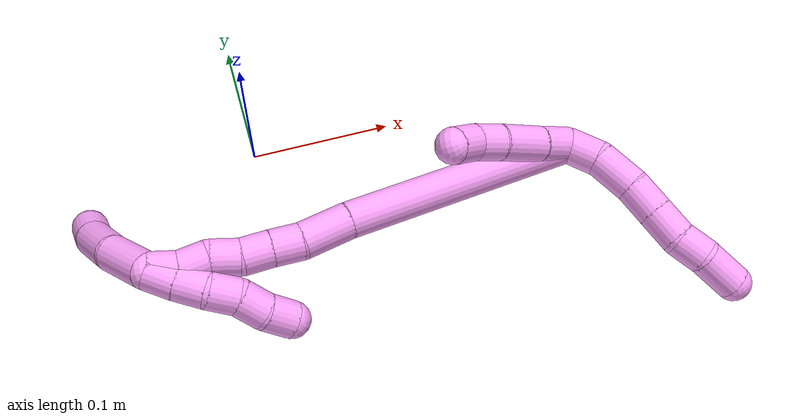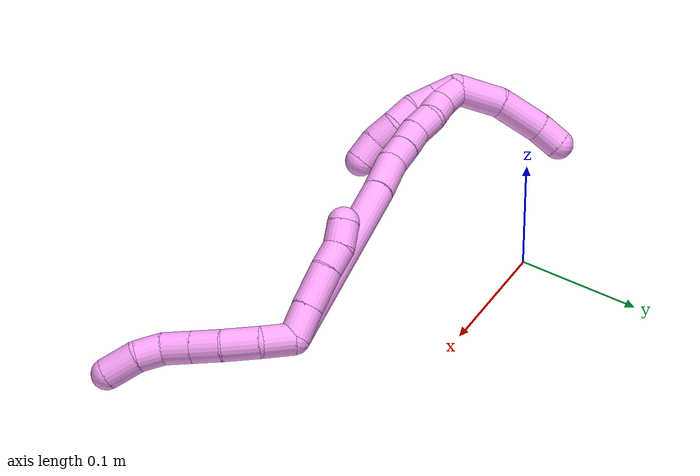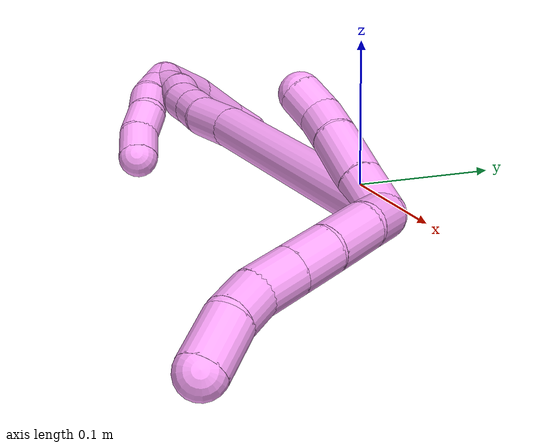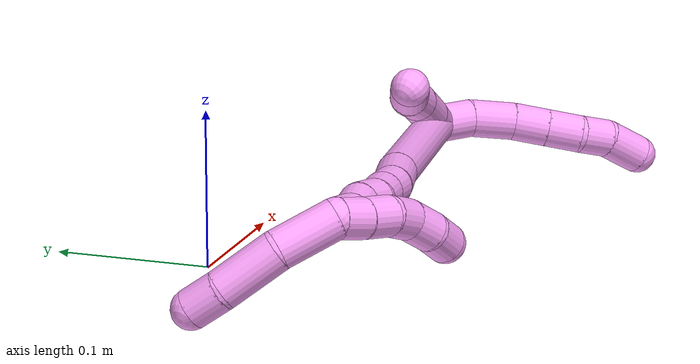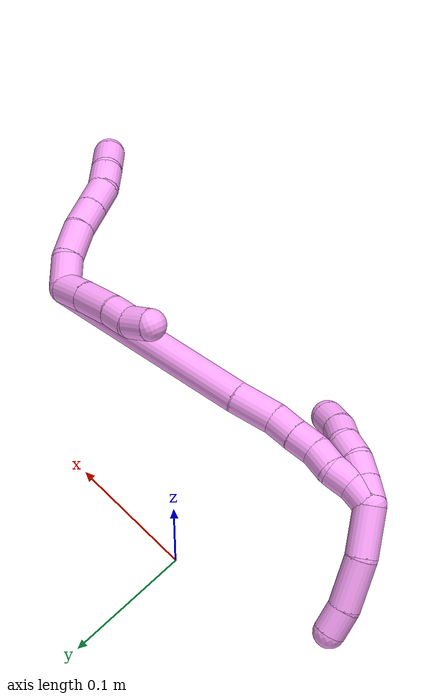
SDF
<sdf version="1.7">
 <world name="default">
  <model name="4">
   <static>0</static>
   <link name="4">
    <collision name="collision-cylinder-e_1_2_8">
     <pose>0.006158 -0.004731 0.010016 0.441319 0.507347 0.116179</pose>
     <geometry><cylinder><radius>0.0125</radius><length>0.025348</length></cylinder></geometry>
     <surface>
      <friction><ode><mu>1.16</mu><mu2>1.16</mu2><slip1>0</slip1><slip2>0</slip2></ode></friction>
      <contact><ode><kp>1e+06</kp><kd>1</kd><max_vel>0</max_vel><min_depth>0.001</min_depth></ode></contact>
     </surface>
    </collision>
    <visual name="visual-cylinder-e_1_2_8">
     <pose>0.006158 -0.004731 0.010016 0.441319 0.507347 0.116179</pose>
     <geometry><cylinder><radius>0.0125</radius><length>0.025348</length></cylinder></geometry>
     <material><ambient>1 0.65098 0.996078 1</ambient></material>
    </visual>
    <collision name="collision-cylinder-e_2_8_9">
     <pose>0.021545 -0.01707 0.028678 0.721548 0.675627 0.26353</pose>
     <geometry><cylinder><radius>0.0125</radius><length>0.029517</length></cylinder></geometry>
     <surface>
      <friction><ode><mu>1.16</mu><mu2>1.16</mu2><slip1>0</slip1><slip2>0</slip2></ode></friction>
      <contact><ode><kp>1e+06</kp><kd>1</kd><max_vel>0</max_vel><min_depth>0.001</min_depth></ode></contact>
     </surface>
    </collision>
    <visual name="visual-cylinder-e_2_8_9">
     <pose>0.021545 -0.01707 0.028678 0.721548 0.675627 0.26353</pose>
     <geometry><cylinder><radius>0.0125</radius><length>0.029517</length></cylinder></geometry>
     <material><ambient>1 0.65098 0.996078 1</ambient></material>
    </visual>
    <collision name="collision-cylinder-e_3_9_10">
     <pose>0.038614 -0.031545 0.04268 0.908492 0.732847 0.37048</pose>
     <geometry><cylinder><radius>0.0125</radius><length>0.023435</length></cylinder></geometry>
     <surface>
      <friction><ode><mu>1.16</mu><mu2>1.16</mu2><slip1>0</slip1><slip2>0</slip2></ode></friction>
      <contact><ode><kp>1e+06</kp><kd>1</kd><max_vel>0</max_vel><min_depth>0.001</min_depth></ode></contact>
     </surface>
    </collision>
    <visual name="visual-cylinder-e_3_9_10">
     <pose>0.038614 -0.031545 0.04268 0.908492 0.732847 0.37048</pose>
     <geometry><cylinder><radius>0.0125</radius><length>0.023435</length></cylinder></geometry>
     <material><ambient>1 0.65098 0.996078 1</ambient></material>
    </visual>
    <collision name="collision-cylinder-e_4_10_11">
     <pose>0.054208 -0.045202 0.05338 0.90387 0.731466 0.367617</pose>
     <geometry><cylinder><radius>0.0125</radius><length>0.023221</length></cylinder></geometry>
     <surface>
      <friction><ode><mu>1.16</mu><mu2>1.16</mu2><slip1>0</slip1><slip2>0</slip2></ode></friction>
      <contact><ode><kp>1e+06</kp><kd>1</kd><max_vel>0</max_vel><min_depth>0.001</min_depth></ode></contact>
     </surface>
    </collision>
    <visual name="visual-cylinder-e_4_10_11">
     <pose>0.054208 -0.045202 0.05338 0.90387 0.731466 0.367617</pose>
     <geometry><cylinder><radius>0.0125</radius><length>0.023221</length></cylinder></geometry>
     <material><ambient>1 0.65098 0.996078 1</ambient></material>
    </visual>
    <collision name="collision-cylinder-e_5_11_12">
     <pose>0.069438 -0.055543 0.064951 0.518413 0.806328 0.225249</pose>
     <geometry><cylinder><radius>0.0125</radius><length>0.020712</length></cylinder></geometry>
     <surface>
      <friction><ode><mu>1.16</mu><mu2>1.16</mu2><slip1>0</slip1><slip2>0</slip2></ode></friction>
      <contact><ode><kp>1e+06</kp><kd>1</kd><max_vel>0</max_vel><min_depth>0.001</min_depth></ode></contact>
     </surface>
    </collision>
    <visual name="visual-cylinder-e_5_11_12">
     <pose>0.069438 -0.055543 0.064951 0.518413 0.806328 0.225249</pose>
     <geometry><cylinder><radius>0.0125</radius><length>0.020712</length></cylinder></geometry>
     <material><ambient>1 0.65098 0.996078 1</ambient></material>
    </visual>
    <collision name="collision-cylinder-e_6_12_6">
     <pose>0.089188 -0.06182 0.077062 0.43376 1.08478 0.264052</pose>
     <geometry><cylinder><radius>0.0125</radius><length>0.027768</length></cylinder></geometry>
     <surface>
      <friction><ode><mu>1.16</mu><mu2>1.16</mu2><slip1>0</slip1><slip2>0</slip2></ode></friction>
      <contact><ode><kp>1e+06</kp><kd>1</kd><max_vel>0</max_vel><min_depth>0.001</min_depth></ode></contact>
     </surface>
    </collision>
    <visual name="visual-cylinder-e_6_12_6">
     <pose>0.089188 -0.06182 0.077062 0.43376 1.08478 0.264052</pose>
     <geometry><cylinder><radius>0.0125</radius><length>0.027768</length></cylinder></geometry>
     <material><ambient>1 0.65098 0.996078 1</ambient></material>
    </visual>
    <collision name="collision-cylinder-e_1_2_13">
     <pose>-0.008983 -0.007045 -0.006127 2.28662 -0.766077 -1.44832</pose>
     <geometry><cylinder><radius>0.0125</radius><length>0.025913</length></cylinder></geometry>
     <surface>
      <friction><ode><mu>1.16</mu><mu2>1.16</mu2><slip1>0</slip1><slip2>0</slip2></ode></friction>
      <contact><ode><kp>1e+06</kp><kd>1</kd><max_vel>0</max_vel><min_depth>0.001</min_depth></ode></contact>
     </surface>
    </collision>
    <visual name="visual-cylinder-e_1_2_13">
     <pose>-0.008983 -0.007045 -0.006127 2.28662 -0.766077 -1.44832</pose>
     <geometry><cylinder><radius>0.0125</radius><length>0.025913</length></cylinder></geometry>
     <material><ambient>1 0.65098 0.996078 1</ambient></material>
    </visual>
    <collision name="collision-cylinder-e_2_13_14">
     <pose>-0.029769 -0.022712 -0.020645 2.3426 -0.775839 -1.53812</pose>
     <geometry><cylinder><radius>0.0125</radius><length>0.033706</length></cylinder></geometry>
     <surface>
      <friction><ode><mu>1.16</mu><mu2>1.16</mu2><slip1>0</slip1><slip2>0</slip2></ode></friction>
      <contact><ode><kp>1e+06</kp><kd>1</kd><max_vel>0</max_vel><min_depth>0.001</min_depth></ode></contact>
     </surface>
    </collision>
    <visual name="visual-cylinder-e_2_13_14">
     <pose>-0.029769 -0.022712 -0.020645 2.3426 -0.775839 -1.53812</pose>
     <geometry><cylinder><radius>0.0125</radius><length>0.033706</length></cylinder></geometry>
     <material><ambient>1 0.65098 0.996078 1</ambient></material>
    </visual>
    <collision name="collision-cylinder-e_3_14_15">
     <pose>-0.048144 -0.036169 -0.034979 2.45858 -0.709012 -1.61134</pose>
     <geometry><cylinder><radius>0.0125</radius><length>0.02019</length></cylinder></geometry>
     <surface>
      <friction><ode><mu>1.16</mu><mu2>1.16</mu2><slip1>0</slip1><slip2>0</slip2></ode></friction>
      <contact><ode><kp>1e+06</kp><kd>1</kd><max_vel>0</max_vel><min_depth>0.001</min_depth></ode></contact>
     </surface>
    </collision>
    <visual name="visual-cylinder-e_3_14_15">
     <pose>-0.048144 -0.036169 -0.034979 2.45858 -0.709012 -1.61134</pose>
     <geometry><cylinder><radius>0.0125</radius><length>0.02019</length></cylinder></geometry>
     <material><ambient>1 0.65098 0.996078 1</ambient></material>
    </visual>
    <collision name="collision-cylinder-e_4_15_5">
     <pose>-0.060927 -0.048118 -0.044493 2.03613 -0.662652 -1.01742</pose>
     <geometry><cylinder><radius>0.0125</radius><length>0.020191</length></cylinder></geometry>
     <surface>
      <friction><ode><mu>1.16</mu><mu2>1.16</mu2><slip1>0</slip1><slip2>0</slip2></ode></friction>
      <contact><ode><kp>1e+06</kp><kd>1</kd><max_vel>0</max_vel><min_depth>0.001</min_depth></ode></contact>
     </surface>
    </collision>
    <visual name="visual-cylinder-e_4_15_5">
     <pose>-0.060927 -0.048118 -0.044493 2.03613 -0.662652 -1.01742</pose>
     <geometry><cylinder><radius>0.0125</radius><length>0.020191</length></cylinder></geometry>
     <material><ambient>1 0.65098 0.996078 1</ambient></material>
    </visual>
    <collision name="collision-cylinder-e_1_2_16">
     <pose>-0.029982 -0.046366 -0.06182 2.49808 -0.370114 -1.02339</pose>
     <geometry><cylinder><radius>0.0125</radius><length>0.165776</length></cylinder></geometry>
     <surface>
      <friction><ode><mu>1.16</mu><mu2>1.16</mu2><slip1>0</slip1><slip2>0</slip2></ode></friction>
      <contact><ode><kp>1e+06</kp><kd>1</kd><max_vel>0</max_vel><min_depth>0.001</min_depth></ode></contact>
     </surface>
    </collision>
    <visual name="visual-cylinder-e_1_2_16">
     <pose>-0.029982 -0.046366 -0.06182 2.49808 -0.370114 -1.02339</pose>
     <geometry><cylinder><radius>0.0125</radius><length>0.165776</length></cylinder></geometry>
     <material><ambient>1 0.65098 0.996078 1</ambient></material>
    </visual>
    <collision name="collision-cylinder-e_2_16_17">
     <pose>-0.064974 -0.103035 -0.136116 2.45132 -0.30023 -0.796448</pose>
     <geometry><cylinder><radius>0.0125</radius><length>0.033877</length></cylinder></geometry>
     <surface>
      <friction><ode><mu>1.16</mu><mu2>1.16</mu2><slip1>0</slip1><slip2>0</slip2></ode></friction>
      <contact><ode><kp>1e+06</kp><kd>1</kd><max_vel>0</max_vel><min_depth>0.001</min_depth></ode></contact>
     </surface>
    </collision>
    <visual name="visual-cylinder-e_2_16_17">
     <pose>-0.064974 -0.103035 -0.136116 2.45132 -0.30023 -0.796448</pose>
     <geometry><cylinder><radius>0.0125</radius><length>0.033877</length></cylinder></geometry>
     <material><ambient>1 0.65098 0.996078 1</ambient></material>
    </visual>
    <collision name="collision-cylinder-e_3_17_18">
     <pose>-0.07415 -0.117978 -0.156554 2.614 -0.424656 -1.34724</pose>
     <geometry><cylinder><radius>0.0125</radius><length>0.020226</length></cylinder></geometry>
     <surface>
      <friction><ode><mu>1.16</mu><mu2>1.16</mu2><slip1>0</slip1><slip2>0</slip2></ode></friction>
      <contact><ode><kp>1e+06</kp><kd>1</kd><max_vel>0</max_vel><min_depth>0.001</min_depth></ode></contact>
     </surface>
    </collision>
    <visual name="visual-cylinder-e_3_17_18">
     <pose>-0.07415 -0.117978 -0.156554 2.614 -0.424656 -1.34724</pose>
     <geometry><cylinder><radius>0.0125</radius><length>0.020226</length></cylinder></geometry>
     <material><ambient>1 0.65098 0.996078 1</ambient></material>
    </visual>
    <collision name="collision-cylinder-e_4_18_19">
     <pose>-0.082162 -0.12767 -0.17228 2.56466 -0.393411 -1.18277</pose>
     <geometry><cylinder><radius>0.0125</radius><length>0.02006</length></cylinder></geometry>
     <surface>
      <friction><ode><mu>1.16</mu><mu2>1.16</mu2><slip1>0</slip1><slip2>0</slip2></ode></friction>
      <contact><ode><kp>1e+06</kp><kd>1</kd><max_vel>0</max_vel><min_depth>0.001</min_depth></ode></contact>
     </surface>
    </collision>
    <visual name="visual-cylinder-e_4_18_19">
     <pose>-0.082162 -0.12767 -0.17228 2.56466 -0.393411 -1.18277</pose>
     <geometry><cylinder><radius>0.0125</radius><length>0.02006</length></cylinder></geometry>
     <material><ambient>1 0.65098 0.996078 1</ambient></material>
    </visual>
    <collision name="collision-cylinder-e_5_19_20">
     <pose>-0.0913 -0.135547 -0.188054 2.80262 -0.557347 -2.06355</pose>
     <geometry><cylinder><radius>0.0125</radius><length>0.020014</length></cylinder></geometry>
     <surface>
      <friction><ode><mu>1.16</mu><mu2>1.16</mu2><slip1>0</slip1><slip2>0</slip2></ode></friction>
      <contact><ode><kp>1e+06</kp><kd>1</kd><max_vel>0</max_vel><min_depth>0.001</min_depth></ode></contact>
     </surface>
    </collision>
    <visual name="visual-cylinder-e_5_19_20">
     <pose>-0.0913 -0.135547 -0.188054 2.80262 -0.557347 -2.06355</pose>
     <geometry><cylinder><radius>0.0125</radius><length>0.020014</length></cylinder></geometry>
     <material><ambient>1 0.65098 0.996078 1</ambient></material>
    </visual>
    <collision name="collision-cylinder-e_6_20_21">
     <pose>-0.099313 -0.143486 -0.204216 2.58122 -0.275435 -0.897706</pose>
     <geometry><cylinder><radius>0.0125</radius><length>0.020003</length></cylinder></geometry>
     <surface>
      <friction><ode><mu>1.16</mu><mu2>1.16</mu2><slip1>0</slip1><slip2>0</slip2></ode></friction>
      <contact><ode><kp>1e+06</kp><kd>1</kd><max_vel>0</max_vel><min_depth>0.001</min_depth></ode></contact>
     </surface>
    </collision>
    <visual name="visual-cylinder-e_6_20_21">
     <pose>-0.099313 -0.143486 -0.204216 2.58122 -0.275435 -0.897706</pose>
     <geometry><cylinder><radius>0.0125</radius><length>0.020003</length></cylinder></geometry>
     <material><ambient>1 0.65098 0.996078 1</ambient></material>
    </visual>
    <collision name="collision-cylinder-e_7_21_1">
     <pose>-0.107307 -0.151537 -0.220369 2.78989 -0.554126 -2.02465</pose>
     <geometry><cylinder><radius>0.0125</radius><length>0.020044</length></cylinder></geometry>
     <surface>
      <friction><ode><mu>1.16</mu><mu2>1.16</mu2><slip1>0</slip1><slip2>0</slip2></ode></friction>
      <contact><ode><kp>1e+06</kp><kd>1</kd><max_vel>0</max_vel><min_depth>0.001</min_depth></ode></contact>
     </surface>
    </collision>
    <visual name="visual-cylinder-e_7_21_1">
     <pose>-0.107307 -0.151537 -0.220369 2.78989 -0.554126 -2.02465</pose>
     <geometry><cylinder><radius>0.0125</radius><length>0.020044</length></cylinder></geometry>
     <material><ambient>1 0.65098 0.996078 1</ambient></material>
    </visual>
    <collision name="collision-cylinder-e_1_1_22">
     <pose>-0.105946 -0.15539 -0.220944 0.122902 0.725384 0.046689</pose>
     <geometry><cylinder><radius>0.0125</radius><length>0.02</length></cylinder></geometry>
     <surface>
      <friction><ode><mu>1.16</mu><mu2>1.16</mu2><slip1>0</slip1><slip2>0</slip2></ode></friction>
      <contact><ode><kp>1e+06</kp><kd>1</kd><max_vel>0</max_vel><min_depth>0.001</min_depth></ode></contact>
     </surface>
    </collision>
    <visual name="visual-cylinder-e_1_1_22">
     <pose>-0.105946 -0.15539 -0.220944 0.122902 0.725384 0.046689</pose>
     <geometry><cylinder><radius>0.0125</radius><length>0.02</length></cylinder></geometry>
     <material><ambient>1 0.65098 0.996078 1</ambient></material>
    </visual>
    <collision name="collision-cylinder-e_2_22_23">
     <pose>-0.093234 -0.156817 -0.205593 0.064173 0.653272 0.021747</pose>
     <geometry><cylinder><radius>0.0125</radius><length>0.02</length></cylinder></geometry>
     <surface>
      <friction><ode><mu>1.16</mu><mu2>1.16</mu2><slip1>0</slip1><slip2>0</slip2></ode></friction>
      <contact><ode><kp>1e+06</kp><kd>1</kd><max_vel>0</max_vel><min_depth>0.001</min_depth></ode></contact>
     </surface>
    </collision>
    <visual name="visual-cylinder-e_2_22_23">
     <pose>-0.093234 -0.156817 -0.205593 0.064173 0.653272 0.021747</pose>
     <geometry><cylinder><radius>0.0125</radius><length>0.02</length></cylinder></geometry>
     <material><ambient>1 0.65098 0.996078 1</ambient></material>
    </visual>
    <collision name="collision-cylinder-e_3_23_24">
     <pose>-0.079881 -0.155635 -0.191019 -0.249016 0.814637 -0.107891</pose>
     <geometry><cylinder><radius>0.0125</radius><length>0.02</length></cylinder></geometry>
     <surface>
      <friction><ode><mu>1.16</mu><mu2>1.16</mu2><slip1>0</slip1><slip2>0</slip2></ode></friction>
      <contact><ode><kp>1e+06</kp><kd>1</kd><max_vel>0</max_vel><min_depth>0.001</min_depth></ode></contact>
     </surface>
    </collision>
    <visual name="visual-cylinder-e_3_23_24">
     <pose>-0.079881 -0.155635 -0.191019 -0.249016 0.814637 -0.107891</pose>
     <geometry><cylinder><radius>0.0125</radius><length>0.02</length></cylinder></geometry>
     <material><ambient>1 0.65098 0.996078 1</ambient></material>
    </visual>
    <collision name="collision-cylinder-e_4_24_25">
     <pose>-0.063735 -0.153887 -0.179754 -0.012454 1.09106 -0.007559</pose>
     <geometry><cylinder><radius>0.0125</radius><length>0.02</length></cylinder></geometry>
     <surface>
      <friction><ode><mu>1.16</mu><mu2>1.16</mu2><slip1>0</slip1><slip2>0</slip2></ode></friction>
      <contact><ode><kp>1e+06</kp><kd>1</kd><max_vel>0</max_vel><min_depth>0.001</min_depth></ode></contact>
     </surface>
    </collision>
    <visual name="visual-cylinder-e_4_24_25">
     <pose>-0.063735 -0.153887 -0.179754 -0.012454 1.09106 -0.007559</pose>
     <geometry><cylinder><radius>0.0125</radius><length>0.02</length></cylinder></geometry>
     <material><ambient>1 0.65098 0.996078 1</ambient></material>
    </visual>
    <collision name="collision-cylinder-e_5_25_4">
     <pose>-0.046329 -0.151286 -0.170591 -0.509891 1.02272 -0.290427</pose>
     <geometry><cylinder><radius>0.0125</radius><length>0.02</length></cylinder></geometry>
     <surface>
      <friction><ode><mu>1.16</mu><mu2>1.16</mu2><slip1>0</slip1><slip2>0</slip2></ode></friction>
      <contact><ode><kp>1e+06</kp><kd>1</kd><max_vel>0</max_vel><min_depth>0.001</min_depth></ode></contact>
     </surface>
    </collision>
    <visual name="visual-cylinder-e_5_25_4">
     <pose>-0.046329 -0.151286 -0.170591 -0.509891 1.02272 -0.290427</pose>
     <geometry><cylinder><radius>0.0125</radius><length>0.02</length></cylinder></geometry>
     <material><ambient>1 0.65098 0.996078 1</ambient></material>
    </visual>
    <collision name="collision-cylinder-e_1_1_26">
     <pose>-0.11508 -0.144145 -0.244581 -2.57436 -0.129323 0.437208</pose>
     <geometry><cylinder><radius>0.0125</radius><length>0.038768</length></cylinder></geometry>
     <surface>
      <friction><ode><mu>1.16</mu><mu2>1.16</mu2><slip1>0</slip1><slip2>0</slip2></ode></friction>
      <contact><ode><kp>1e+06</kp><kd>1</kd><max_vel>0</max_vel><min_depth>0.001</min_depth></ode></contact>
     </surface>
    </collision>
    <visual name="visual-cylinder-e_1_1_26">
     <pose>-0.11508 -0.144145 -0.244581 -2.57436 -0.129323 0.437208</pose>
     <geometry><cylinder><radius>0.0125</radius><length>0.038768</length></cylinder></geometry>
     <material><ambient>1 0.65098 0.996078 1</ambient></material>
    </visual>
    <collision name="collision-cylinder-e_2_26_27">
     <pose>-0.116016 -0.120843 -0.275689 -2.42503 0.07902 -0.210365</pose>
     <geometry><cylinder><radius>0.0125</radius><length>0.039631</length></cylinder></geometry>
     <surface>
      <friction><ode><mu>1.16</mu><mu2>1.16</mu2><slip1>0</slip1><slip2>0</slip2></ode></friction>
      <contact><ode><kp>1e+06</kp><kd>1</kd><max_vel>0</max_vel><min_depth>0.001</min_depth></ode></contact>
     </surface>
    </collision>
    <visual name="visual-cylinder-e_2_26_27">
     <pose>-0.116016 -0.120843 -0.275689 -2.42503 0.07902 -0.210365</pose>
     <geometry><cylinder><radius>0.0125</radius><length>0.039631</length></cylinder></geometry>
     <material><ambient>1 0.65098 0.996078 1</ambient></material>
    </visual>
    <collision name="collision-cylinder-e_3_27_3">
     <pose>-0.11314 -0.099341 -0.297081 -2.22186 0.121732 -0.244856</pose>
     <geometry><cylinder><radius>0.0125</radius><length>0.021601</length></cylinder></geometry>
     <surface>
      <friction><ode><mu>1.16</mu><mu2>1.16</mu2><slip1>0</slip1><slip2>0</slip2></ode></friction>
      <contact><ode><kp>1e+06</kp><kd>1</kd><max_vel>0</max_vel><min_depth>0.001</min_depth></ode></contact>
     </surface>
    </collision>
    <visual name="visual-cylinder-e_3_27_3">
     <pose>-0.11314 -0.099341 -0.297081 -2.22186 0.121732 -0.244856</pose>
     <geometry><cylinder><radius>0.0125</radius><length>0.021601</length></cylinder></geometry>
     <material><ambient>1 0.65098 0.996078 1</ambient></material>
    </visual>
    <collision name="collision-sphere-3">
     <pose>-0.111828 -0.090814 -0.303578 0 -0 0</pose>
     <geometry><sphere><radius>0.0125</radius></sphere></geometry>
     <surface>
      <friction><ode><mu>1.16</mu><mu2>1.16</mu2><slip1>0</slip1><slip2>0</slip2></ode></friction>
      <contact><ode><kp>1e+06</kp><kd>1</kd><max_vel>0</max_vel><min_depth>0.001</min_depth></ode></contact>
     </surface>
    </collision>
    <visual name="visual-sphere-3">
     <pose>-0.111828 -0.090814 -0.303578 0 -0 0</pose>
     <geometry><sphere><radius>0.0125</radius></sphere></geometry>
     <material><ambient>1 0.65098 0.996078 1</ambient></material>
    </visual>
    <collision name="collision-sphere-27">
     <pose>-0.114451 -0.107869 -0.290584 0 -0 0</pose>
     <geometry><sphere><radius>0.0125</radius></sphere></geometry>
     <surface>
      <friction><ode><mu>1.16</mu><mu2>1.16</mu2><slip1>0</slip1><slip2>0</slip2></ode></friction>
      <contact><ode><kp>1e+06</kp><kd>1</kd><max_vel>0</max_vel><min_depth>0.001</min_depth></ode></contact>
     </surface>
    </collision>
    <visual name="visual-sphere-27">
     <pose>-0.114451 -0.107869 -0.290584 0 -0 0</pose>
     <geometry><sphere><radius>0.0125</radius></sphere></geometry>
     <material><ambient>1 0.65098 0.996078 1</ambient></material>
    </visual>
    <collision name="collision-sphere-26">
     <pose>-0.11758 -0.133817 -0.260793 0 -0 0</pose>
     <geometry><sphere><radius>0.0125</radius></sphere></geometry>
     <surface>
      <friction><ode><mu>1.16</mu><mu2>1.16</mu2><slip1>0</slip1><slip2>0</slip2></ode></friction>
      <contact><ode><kp>1e+06</kp><kd>1</kd><max_vel>0</max_vel><min_depth>0.001</min_depth></ode></contact>
     </surface>
    </collision>
    <visual name="visual-sphere-26">
     <pose>-0.11758 -0.133817 -0.260793 0 -0 0</pose>
     <geometry><sphere><radius>0.0125</radius></sphere></geometry>
     <material><ambient>1 0.65098 0.996078 1</ambient></material>
    </visual>
    <collision name="collision-sphere-4">
     <pose>-0.037793 -0.148743 -0.166043 0 -0 0</pose>
     <geometry><sphere><radius>0.0125</radius></sphere></geometry>
     <surface>
      <friction><ode><mu>1.16</mu><mu2>1.16</mu2><slip1>0</slip1><slip2>0</slip2></ode></friction>
      <contact><ode><kp>1e+06</kp><kd>1</kd><max_vel>0</max_vel><min_depth>0.001</min_depth></ode></contact>
     </surface>
    </collision>
    <visual name="visual-sphere-4">
     <pose>-0.037793 -0.148743 -0.166043 0 -0 0</pose>
     <geometry><sphere><radius>0.0125</radius></sphere></geometry>
     <material><ambient>1 0.65098 0.996078 1</ambient></material>
    </visual>
    <collision name="collision-sphere-25">
     <pose>-0.054864 -0.153829 -0.175139 0 -0 0</pose>
     <geometry><sphere><radius>0.0125</radius></sphere></geometry>
     <surface>
      <friction><ode><mu>1.16</mu><mu2>1.16</mu2><slip1>0</slip1><slip2>0</slip2></ode></friction>
      <contact><ode><kp>1e+06</kp><kd>1</kd><max_vel>0</max_vel><min_depth>0.001</min_depth></ode></contact>
     </surface>
    </collision>
    <visual name="visual-sphere-25">
     <pose>-0.054864 -0.153829 -0.175139 0 -0 0</pose>
     <geometry><sphere><radius>0.0125</radius></sphere></geometry>
     <material><ambient>1 0.65098 0.996078 1</ambient></material>
    </visual>
    <collision name="collision-sphere-24">
     <pose>-0.072606 -0.153944 -0.184369 0 -0 0</pose>
     <geometry><sphere><radius>0.0125</radius></sphere></geometry>
     <surface>
      <friction><ode><mu>1.16</mu><mu2>1.16</mu2><slip1>0</slip1><slip2>0</slip2></ode></friction>
      <contact><ode><kp>1e+06</kp><kd>1</kd><max_vel>0</max_vel><min_depth>0.001</min_depth></ode></contact>
     </surface>
    </collision>
    <visual name="visual-sphere-24">
     <pose>-0.072606 -0.153944 -0.184369 0 -0 0</pose>
     <geometry><sphere><radius>0.0125</radius></sphere></geometry>
     <material><ambient>1 0.65098 0.996078 1</ambient></material>
    </visual>
    <collision name="collision-sphere-23">
     <pose>-0.087156 -0.157326 -0.197668 0 -0 0</pose>
     <geometry><sphere><radius>0.0125</radius></sphere></geometry>
     <surface>
      <friction><ode><mu>1.16</mu><mu2>1.16</mu2><slip1>0</slip1><slip2>0</slip2></ode></friction>
      <contact><ode><kp>1e+06</kp><kd>1</kd><max_vel>0</max_vel><min_depth>0.001</min_depth></ode></contact>
     </surface>
    </collision>
    <visual name="visual-sphere-23">
     <pose>-0.087156 -0.157326 -0.197668 0 -0 0</pose>
     <geometry><sphere><radius>0.0125</radius></sphere></geometry>
     <material><ambient>1 0.65098 0.996078 1</ambient></material>
    </visual>
    <collision name="collision-sphere-22">
     <pose>-0.099312 -0.156308 -0.213518 0 -0 0</pose>
     <geometry><sphere><radius>0.0125</radius></sphere></geometry>
     <surface>
      <friction><ode><mu>1.16</mu><mu2>1.16</mu2><slip1>0</slip1><slip2>0</slip2></ode></friction>
      <contact><ode><kp>1e+06</kp><kd>1</kd><max_vel>0</max_vel><min_depth>0.001</min_depth></ode></contact>
     </surface>
    </collision>
    <visual name="visual-sphere-22">
     <pose>-0.099312 -0.156308 -0.213518 0 -0 0</pose>
     <geometry><sphere><radius>0.0125</radius></sphere></geometry>
     <material><ambient>1 0.65098 0.996078 1</ambient></material>
    </visual>
    <collision name="collision-sphere-1">
     <pose>-0.11258 -0.154473 -0.22837 0 -0 0</pose>
     <geometry><sphere><radius>0.0125</radius></sphere></geometry>
     <surface>
      <friction><ode><mu>1.16</mu><mu2>1.16</mu2><slip1>0</slip1><slip2>0</slip2></ode></friction>
      <contact><ode><kp>1e+06</kp><kd>1</kd><max_vel>0</max_vel><min_depth>0.001</min_depth></ode></contact>
     </surface>
    </collision>
    <visual name="visual-sphere-1">
     <pose>-0.11258 -0.154473 -0.22837 0 -0 0</pose>
     <geometry><sphere><radius>0.0125</radius></sphere></geometry>
     <material><ambient>1 0.65098 0.996078 1</ambient></material>
    </visual>
    <collision name="collision-sphere-21">
     <pose>-0.102033 -0.148601 -0.212368 0 -0 0</pose>
     <geometry><sphere><radius>0.0125</radius></sphere></geometry>
     <surface>
      <friction><ode><mu>1.16</mu><mu2>1.16</mu2><slip1>0</slip1><slip2>0</slip2></ode></friction>
      <contact><ode><kp>1e+06</kp><kd>1</kd><max_vel>0</max_vel><min_depth>0.001</min_depth></ode></contact>
     </surface>
    </collision>
    <visual name="visual-sphere-21">
     <pose>-0.102033 -0.148601 -0.212368 0 -0 0</pose>
     <geometry><sphere><radius>0.0125</radius></sphere></geometry>
     <material><ambient>1 0.65098 0.996078 1</ambient></material>
    </visual>
    <collision name="collision-sphere-12">
     <pose>0.076912 -0.059094 0.071178 0 -0 0</pose>
     <geometry><sphere><radius>0.0125</radius></sphere></geometry>
     <surface>
      <friction><ode><mu>1.16</mu><mu2>1.16</mu2><slip1>0</slip1><slip2>0</slip2></ode></friction>
      <contact><ode><kp>1e+06</kp><kd>1</kd><max_vel>0</max_vel><min_depth>0.001</min_depth></ode></contact>
     </surface>
    </collision>
    <visual name="visual-sphere-12">
     <pose>0.076912 -0.059094 0.071178 0 -0 0</pose>
     <geometry><sphere><radius>0.0125</radius></sphere></geometry>
     <material><ambient>1 0.65098 0.996078 1</ambient></material>
    </visual>
    <collision name="collision-sphere-11">
     <pose>0.061963 -0.051991 0.058725 0 -0 0</pose>
     <geometry><sphere><radius>0.0125</radius></sphere></geometry>
     <surface>
      <friction><ode><mu>1.16</mu><mu2>1.16</mu2><slip1>0</slip1><slip2>0</slip2></ode></friction>
      <contact><ode><kp>1e+06</kp><kd>1</kd><max_vel>0</max_vel><min_depth>0.001</min_depth></ode></contact>
     </surface>
    </collision>
    <visual name="visual-sphere-11">
     <pose>0.061963 -0.051991 0.058725 0 -0 0</pose>
     <geometry><sphere><radius>0.0125</radius></sphere></geometry>
     <material><ambient>1 0.65098 0.996078 1</ambient></material>
    </visual>
    <collision name="collision-sphere-10">
     <pose>0.046453 -0.038413 0.048036 0 -0 0</pose>
     <geometry><sphere><radius>0.0125</radius></sphere></geometry>
     <surface>
      <friction><ode><mu>1.16</mu><mu2>1.16</mu2><slip1>0</slip1><slip2>0</slip2></ode></friction>
      <contact><ode><kp>1e+06</kp><kd>1</kd><max_vel>0</max_vel><min_depth>0.001</min_depth></ode></contact>
     </surface>
    </collision>
    <visual name="visual-sphere-10">
     <pose>0.046453 -0.038413 0.048036 0 -0 0</pose>
     <geometry><sphere><radius>0.0125</radius></sphere></geometry>
     <material><ambient>1 0.65098 0.996078 1</ambient></material>
    </visual>
    <collision name="collision-sphere-9">
     <pose>0.030775 -0.024677 0.037324 0 -0 0</pose>
     <geometry><sphere><radius>0.0125</radius></sphere></geometry>
     <surface>
      <friction><ode><mu>1.16</mu><mu2>1.16</mu2><slip1>0</slip1><slip2>0</slip2></ode></friction>
      <contact><ode><kp>1e+06</kp><kd>1</kd><max_vel>0</max_vel><min_depth>0.001</min_depth></ode></contact>
     </surface>
    </collision>
    <visual name="visual-sphere-9">
     <pose>0.030775 -0.024677 0.037324 0 -0 0</pose>
     <geometry><sphere><radius>0.0125</radius></sphere></geometry>
     <material><ambient>1 0.65098 0.996078 1</ambient></material>
    </visual>
    <collision name="collision-sphere-2">
     <geometry><sphere><radius>0.0125</radius></sphere></geometry>
     <surface>
      <friction><ode><mu>1.16</mu><mu2>1.16</mu2><slip1>0</slip1><slip2>0</slip2></ode></friction>
      <contact><ode><kp>1e+06</kp><kd>1</kd><max_vel>0</max_vel><min_depth>0.001</min_depth></ode></contact>
     </surface>
    </collision>
    <visual name="visual-sphere-2">
     <geometry><sphere><radius>0.0125</radius></sphere></geometry>
     <material><ambient>1 0.65098 0.996078 1</ambient></material>
    </visual>
    <collision name="collision-sphere-19">
     <pose>-0.086007 -0.132723 -0.180045 0 -0 0</pose>
     <geometry><sphere><radius>0.0125</radius></sphere></geometry>
     <surface>
      <friction><ode><mu>1.16</mu><mu2>1.16</mu2><slip1>0</slip1><slip2>0</slip2></ode></friction>
      <contact><ode><kp>1e+06</kp><kd>1</kd><max_vel>0</max_vel><min_depth>0.001</min_depth></ode></contact>
     </surface>
    </collision>
    <visual name="visual-sphere-19">
     <pose>-0.086007 -0.132723 -0.180045 0 -0 0</pose>
     <geometry><sphere><radius>0.0125</radius></sphere></geometry>
     <material><ambient>1 0.65098 0.996078 1</ambient></material>
    </visual>
    <collision name="collision-sphere-8">
     <pose>0.012315 -0.009463 0.020032 0 -0 0</pose>
     <geometry><sphere><radius>0.0125</radius></sphere></geometry>
     <surface>
      <friction><ode><mu>1.16</mu><mu2>1.16</mu2><slip1>0</slip1><slip2>0</slip2></ode></friction>
      <contact><ode><kp>1e+06</kp><kd>1</kd><max_vel>0</max_vel><min_depth>0.001</min_depth></ode></contact>
     </surface>
    </collision>
    <visual name="visual-sphere-8">
     <pose>0.012315 -0.009463 0.020032 0 -0 0</pose>
     <geometry><sphere><radius>0.0125</radius></sphere></geometry>
     <material><ambient>1 0.65098 0.996078 1</ambient></material>
    </visual>
    <collision name="collision-sphere-6">
     <pose>0.101464 -0.064546 0.082947 0 -0 0</pose>
     <geometry><sphere><radius>0.0125</radius></sphere></geometry>
     <surface>
      <friction><ode><mu>1.16</mu><mu2>1.16</mu2><slip1>0</slip1><slip2>0</slip2></ode></friction>
      <contact><ode><kp>1e+06</kp><kd>1</kd><max_vel>0</max_vel><min_depth>0.001</min_depth></ode></contact>
     </surface>
    </collision>
    <visual name="visual-sphere-6">
     <pose>0.101464 -0.064546 0.082947 0 -0 0</pose>
     <geometry><sphere><radius>0.0125</radius></sphere></geometry>
     <material><ambient>1 0.65098 0.996078 1</ambient></material>
    </visual>
    <collision name="collision-sphere-13">
     <pose>-0.017966 -0.014091 -0.012255 0 -0 0</pose>
     <geometry><sphere><radius>0.0125</radius></sphere></geometry>
     <surface>
      <friction><ode><mu>1.16</mu><mu2>1.16</mu2><slip1>0</slip1><slip2>0</slip2></ode></friction>
      <contact><ode><kp>1e+06</kp><kd>1</kd><max_vel>0</max_vel><min_depth>0.001</min_depth></ode></contact>
     </surface>
    </collision>
    <visual name="visual-sphere-13">
     <pose>-0.017966 -0.014091 -0.012255 0 -0 0</pose>
     <geometry><sphere><radius>0.0125</radius></sphere></geometry>
     <material><ambient>1 0.65098 0.996078 1</ambient></material>
    </visual>
    <collision name="collision-sphere-14">
     <pose>-0.041571 -0.031334 -0.029035 0 -0 0</pose>
     <geometry><sphere><radius>0.0125</radius></sphere></geometry>
     <surface>
      <friction><ode><mu>1.16</mu><mu2>1.16</mu2><slip1>0</slip1><slip2>0</slip2></ode></friction>
      <contact><ode><kp>1e+06</kp><kd>1</kd><max_vel>0</max_vel><min_depth>0.001</min_depth></ode></contact>
     </surface>
    </collision>
    <visual name="visual-sphere-14">
     <pose>-0.041571 -0.031334 -0.029035 0 -0 0</pose>
     <geometry><sphere><radius>0.0125</radius></sphere></geometry>
     <material><ambient>1 0.65098 0.996078 1</ambient></material>
    </visual>
    <collision name="collision-sphere-15">
     <pose>-0.054716 -0.041005 -0.040922 0 -0 0</pose>
     <geometry><sphere><radius>0.0125</radius></sphere></geometry>
     <surface>
      <friction><ode><mu>1.16</mu><mu2>1.16</mu2><slip1>0</slip1><slip2>0</slip2></ode></friction>
      <contact><ode><kp>1e+06</kp><kd>1</kd><max_vel>0</max_vel><min_depth>0.001</min_depth></ode></contact>
     </surface>
    </collision>
    <visual name="visual-sphere-15">
     <pose>-0.054716 -0.041005 -0.040922 0 -0 0</pose>
     <geometry><sphere><radius>0.0125</radius></sphere></geometry>
     <material><ambient>1 0.65098 0.996078 1</ambient></material>
    </visual>
    <collision name="collision-sphere-5">
     <pose>-0.067138 -0.05523 -0.048064 0 -0 0</pose>
     <geometry><sphere><radius>0.0125</radius></sphere></geometry>
     <surface>
      <friction><ode><mu>1.16</mu><mu2>1.16</mu2><slip1>0</slip1><slip2>0</slip2></ode></friction>
      <contact><ode><kp>1e+06</kp><kd>1</kd><max_vel>0</max_vel><min_depth>0.001</min_depth></ode></contact>
     </surface>
    </collision>
    <visual name="visual-sphere-5">
     <pose>-0.067138 -0.05523 -0.048064 0 -0 0</pose>
     <geometry><sphere><radius>0.0125</radius></sphere></geometry>
     <material><ambient>1 0.65098 0.996078 1</ambient></material>
    </visual>
    <collision name="collision-sphere-16">
     <pose>-0.059965 -0.092732 -0.123639 0 -0 0</pose>
     <geometry><sphere><radius>0.0125</radius></sphere></geometry>
     <surface>
      <friction><ode><mu>1.16</mu><mu2>1.16</mu2><slip1>0</slip1><slip2>0</slip2></ode></friction>
      <contact><ode><kp>1e+06</kp><kd>1</kd><max_vel>0</max_vel><min_depth>0.001</min_depth></ode></contact>
     </surface>
    </collision>
    <visual name="visual-sphere-16">
     <pose>-0.059965 -0.092732 -0.123639 0 -0 0</pose>
     <geometry><sphere><radius>0.0125</radius></sphere></geometry>
     <material><ambient>1 0.65098 0.996078 1</ambient></material>
    </visual>
    <collision name="collision-sphere-17">
     <pose>-0.069984 -0.113338 -0.148592 0 -0 0</pose>
     <geometry><sphere><radius>0.0125</radius></sphere></geometry>
     <surface>
      <friction><ode><mu>1.16</mu><mu2>1.16</mu2><slip1>0</slip1><slip2>0</slip2></ode></friction>
      <contact><ode><kp>1e+06</kp><kd>1</kd><max_vel>0</max_vel><min_depth>0.001</min_depth></ode></contact>
     </surface>
    </collision>
    <visual name="visual-sphere-17">
     <pose>-0.069984 -0.113338 -0.148592 0 -0 0</pose>
     <geometry><sphere><radius>0.0125</radius></sphere></geometry>
     <material><ambient>1 0.65098 0.996078 1</ambient></material>
    </visual>
    <collision name="collision-sphere-18">
     <pose>-0.078317 -0.122617 -0.164516 0 -0 0</pose>
     <geometry><sphere><radius>0.0125</radius></sphere></geometry>
     <surface>
      <friction><ode><mu>1.16</mu><mu2>1.16</mu2><slip1>0</slip1><slip2>0</slip2></ode></friction>
      <contact><ode><kp>1e+06</kp><kd>1</kd><max_vel>0</max_vel><min_depth>0.001</min_depth></ode></contact>
     </surface>
    </collision>
    <visual name="visual-sphere-18">
     <pose>-0.078317 -0.122617 -0.164516 0 -0 0</pose>
     <geometry><sphere><radius>0.0125</radius></sphere></geometry>
     <material><ambient>1 0.65098 0.996078 1</ambient></material>
    </visual>
    <collision name="collision-sphere-20">
     <pose>-0.096593 -0.138371 -0.196064 0 -0 0</pose>
     <geometry><sphere><radius>0.0125</radius></sphere></geometry>
     <surface>
      <friction><ode><mu>1.16</mu><mu2>1.16</mu2><slip1>0</slip1><slip2>0</slip2></ode></friction>
      <contact><ode><kp>1e+06</kp><kd>1</kd><max_vel>0</max_vel><min_depth>0.001</min_depth></ode></contact>
     </surface>
    </collision>
    <visual name="visual-sphere-20">
     <pose>-0.096593 -0.138371 -0.196064 0 -0 0</pose>
     <geometry><sphere><radius>0.0125</radius></sphere></geometry>
     <material><ambient>1 0.65098 0.996078 1</ambient></material>
    </visual>
    <inertial>
     <pose>-0.04285 -0.080877 -0.100753 0 -0 0</pose>
     <mass>0.75</mass>
     <inertia>
      <ixx>-0.000101</ixx>
      <ixy>0</ixy>
      <ixz>0</ixz>
      <iyy>-0.000413</iyy>
      <iyz>0</iyz>
      <izz>0.000343</izz>
     </inertia>
    </inertial>
   </link>
   <pose>0.208815 -0.08199 0.04552 -0.451504 1.0094 -0.826393</pose>
  </model>
 </world>
</sdf>
